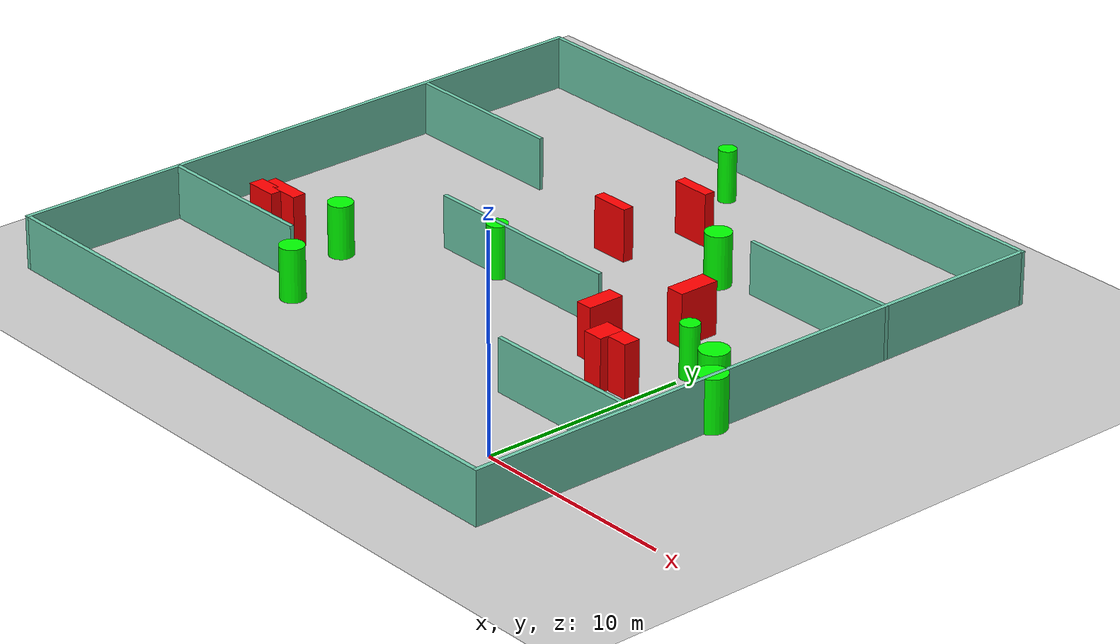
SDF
<sdf version="1.7">
 <world name="default">
  <light name="sun" type="directional">
   <pose>0 0 10 0 -0 0</pose>
   <diffuse>0.8 0.8 0.8 1</diffuse>
   <specular>0.2 0.2 0.2 1</specular>
   <attenuation>
    <range>1000</range>
    <constant>0.9</constant>
    <linear>0.01</linear>
    <quadratic>0.001</quadratic>
   </attenuation>
   <direction>-0.5 0.1 -0.9</direction>
   <spot><inner_angle>0</inner_angle><outer_angle>0</outer_angle><falloff>0</falloff></spot>
  </light>
  <model name="ground_plane">
   <static>1</static>
   <link name="link">
    <collision name="collision">
     <geometry><plane><normal>0 0 1</normal><size>100 100</size></plane></geometry>
     <surface>
      <contact><collide_bitmask>65535</collide_bitmask></contact>
      <friction><ode><mu>100</mu><mu2>50</mu2></ode></friction>
     </surface>
    </collision>
    <visual name="visual">
     <cast_shadows>0</cast_shadows>
     <geometry><plane><normal>0 0 1</normal><size>100 100</size></plane></geometry>
     <material>
      <script><uri>file://media/materials/scripts/gazebo.material</uri><name>Gazebo/Grey</name></script>
     </material>
    </visual>
   </link>
  </model>
  <gravity>0 0 -9.8</gravity>
  <magnetic_field>6e-06 2.3e-05 -4.2e-05</magnetic_field>
  <atmosphere type="adiabatic"/>
  <physics type="ode">
   <max_step_size>0.001</max_step_size>
   <real_time_factor>1</real_time_factor>
   <real_time_update_rate>1000</real_time_update_rate>
  </physics>
  <scene><ambient>0.4 0.4 0.4 1</ambient><background>0.7 0.7 0.7 1</background><shadows>1</shadows></scene>
  <spherical_coordinates>
   <surface_model>EARTH_WGS84</surface_model>
   <latitude_deg>0</latitude_deg>
   <longitude_deg>0</longitude_deg>
   <elevation>0</elevation>
   <heading_deg>0</heading_deg>
  </spherical_coordinates>
  <model name="my_base_walls">
   <link name="Wall_10">
    <collision name="Wall_10_Collision">
     <geometry><box><size>8.2 0.2 2.5</size></box></geometry>
     <pose>0 0 1.25 0 -0 0</pose>
    </collision>
    <visual name="Wall_10_Visual">
     <pose>0 0 1.25 0 -0 0</pose>
     <geometry><box><size>8.2 0.2 2.5</size></box></geometry>
     <material>
      <script><uri>file://media/materials/scripts/gazebo.material</uri><name>Gazebo/Grey</name></script>
      <ambient>0.435294 0.796078 0.67451 1</ambient>
     </material>
     <meta><layer>0</layer></meta>
    </visual>
    <pose>-11 -7 0 0 -0 0</pose>
   </link>
   <link name="Wall_12">
    <collision name="Wall_12_Collision">
     <geometry><box><size>8.2 0.2 2.5</size></box></geometry>
     <pose>0 0 1.25 0 -0 0</pose>
    </collision>
    <visual name="Wall_12_Visual">
     <pose>0 0 1.25 0 -0 0</pose>
     <geometry><box><size>8.2 0.2 2.5</size></box></geometry>
     <material>
      <script><uri>file://media/materials/scripts/gazebo.material</uri><name>Gazebo/Grey</name></script>
      <ambient>0.435294 0.796078 0.67451 1</ambient>
     </material>
     <meta><layer>0</layer></meta>
    </visual>
    <pose>-11 7 0 0 -0 0</pose>
   </link>
   <link name="Wall_14">
    <collision name="Wall_14_Collision">
     <geometry><box><size>8.2 0.2 2.5</size></box></geometry>
     <pose>0 0 1.25 0 -0 0</pose>
    </collision>
    <visual name="Wall_14_Visual">
     <pose>0 0 1.25 0 -0 0</pose>
     <geometry><box><size>8.2 0.2 2.5</size></box></geometry>
     <material>
      <script><uri>file://media/materials/scripts/gazebo.material</uri><name>Gazebo/Grey</name></script>
      <ambient>0.435294 0.796078 0.67451 1</ambient>
     </material>
     <meta><layer>0</layer></meta>
    </visual>
    <pose>11 7 0 0 -0 3.14159</pose>
   </link>
   <link name="Wall_16">
    <collision name="Wall_16_Collision">
     <geometry><box><size>10.2 0.2 2.5</size></box></geometry>
     <pose>0 0 1.25 0 -0 0</pose>
    </collision>
    <visual name="Wall_16_Visual">
     <pose>0 0 1.25 0 -0 0</pose>
     <geometry><box><size>10.2 0.2 2.5</size></box></geometry>
     <material>
      <script><uri>file://media/materials/scripts/gazebo.material</uri><name>Gazebo/Grey</name></script>
      <ambient>0.435294 0.796078 0.67451 1</ambient>
     </material>
     <meta><layer>0</layer></meta>
    </visual>
    <pose>0 0 0 0 -0 3.14159</pose>
   </link>
   <link name="Wall_2">
    <collision name="Wall_2_Collision">
     <geometry><box><size>30.2 0.2 2.5</size></box></geometry>
     <pose>0 0 1.25 0 -0 0</pose>
    </collision>
    <visual name="Wall_2_Visual">
     <pose>0 0 1.25 0 -0 0</pose>
     <geometry><box><size>30.2 0.2 2.5</size></box></geometry>
     <material>
      <script><uri>file://media/materials/scripts/gazebo.material</uri><name>Gazebo/Grey</name></script>
      <ambient>0.435294 0.796078 0.67451 1</ambient>
     </material>
     <meta><layer>0</layer></meta>
    </visual>
    <pose>0 -15 0 0 -0 3.14159</pose>
   </link>
   <link name="Wall_3">
    <collision name="Wall_3_Collision">
     <geometry><box><size>30.2 0.2 2.5</size></box></geometry>
     <pose>0 0 1.25 0 -0 0</pose>
    </collision>
    <visual name="Wall_3_Visual">
     <pose>0 0 1.25 0 -0 0</pose>
     <geometry><box><size>30.2 0.2 2.5</size></box></geometry>
     <material>
      <script><uri>file://media/materials/scripts/gazebo.material</uri><name>Gazebo/Grey</name></script>
      <ambient>0.435294 0.796078 0.67451 1</ambient>
     </material>
     <meta><layer>0</layer></meta>
    </visual>
    <pose>-15 0 0 0 -0 1.5708</pose>
   </link>
   <link name="Wall_4">
    <collision name="Wall_4_Collision">
     <geometry><box><size>30.2 0.2 2.5</size></box></geometry>
     <pose>0 0 1.25 0 -0 0</pose>
    </collision>
    <visual name="Wall_4_Visual">
     <pose>0 0 1.25 0 -0 0</pose>
     <geometry><box><size>30.2 0.2 2.5</size></box></geometry>
     <material>
      <script><uri>file://media/materials/scripts/gazebo.material</uri><name>Gazebo/Grey</name></script>
      <ambient>0.435294 0.796078 0.67451 1</ambient>
     </material>
     <meta><layer>0</layer></meta>
    </visual>
    <pose>0 15 0 0 -0 0</pose>
   </link>
   <link name="Wall_6">
    <collision name="Wall_6_Collision">
     <geometry><box><size>30.2 0.2 2.5</size></box></geometry>
     <pose>0 0 1.25 0 -0 0</pose>
    </collision>
    <visual name="Wall_6_Visual">
     <pose>0 0 1.25 0 -0 0</pose>
     <geometry><box><size>30.2 0.2 2.5</size></box></geometry>
     <material>
      <script><uri>file://media/materials/scripts/gazebo.material</uri><name>Gazebo/Grey</name></script>
      <ambient>0.435294 0.796078 0.67451 1</ambient>
     </material>
     <meta><layer>0</layer></meta>
    </visual>
    <pose>15 0 0 0 -0 1.5708</pose>
   </link>
   <link name="Wall_8">
    <collision name="Wall_8_Collision">
     <geometry><box><size>8.2 0.2 2.5</size></box></geometry>
     <pose>0 0 1.25 0 -0 0</pose>
    </collision>
    <visual name="Wall_8_Visual">
     <pose>0 0 1.25 0 -0 0</pose>
     <geometry><box><size>8.2 0.2 2.5</size></box></geometry>
     <material>
      <script><uri>file://media/materials/scripts/gazebo.material</uri><name>Gazebo/Grey</name></script>
      <ambient>0.435294 0.796078 0.67451 1</ambient>
     </material>
     <meta><layer>0</layer></meta>
    </visual>
    <pose>11 -7 0 0 -0 3.14159</pose>
   </link>
   <static>1</static>
   <pose>-11 11 0 0 -0 0</pose>
  </model>
  <model name="cylinder1">
   <static>1</static>
   <link name="link">
    <inertial>
     <mass>1</mass>
     <inertia><ixx>0.5</ixx><ixy>0</ixy><ixz>0</ixz><iyy>0.5</iyy><iyz>0</iyz><izz>1</izz></inertia>
    </inertial>
    <collision name="collision">
     <geometry><cylinder><radius>0.6778401003966286</radius><length>2.5</length></cylinder></geometry>
    </collision>
    <visual name="visual">
     <geometry><cylinder><radius>0.6778401003966286</radius><length>2.5</length></cylinder></geometry>
     <material>
      <ambient>0 1 0 1</ambient>
      <diffuse>0 1 0 1</diffuse>
      <specular>0.1 0.1 0.1 1</specular>
      <emissive>0 0 0 0</emissive>
     </material>
    </visual>
   </link>
   <pose>2.3594557195913595 9.944418905093954 1.25 0 0 0</pose>
  </model>
  <model name="cylinder2">
   <static>1</static>
   <link name="link">
    <inertial>
     <mass>1</mass>
     <inertia><ixx>0.5</ixx><ixy>0</ixy><ixz>0</ixz><iyy>0.5</iyy><iyz>0</iyz><izz>1</izz></inertia>
    </inertial>
    <collision name="collision">
     <geometry><cylinder><radius>0.4410078118513681</radius><length>2.5</length></cylinder></geometry>
    </collision>
    <visual name="visual">
     <geometry><cylinder><radius>0.4410078118513681</radius><length>2.5</length></cylinder></geometry>
     <material>
      <ambient>0 1 0 1</ambient>
      <diffuse>0 1 0 1</diffuse>
      <specular>0.1 0.1 0.1 1</specular>
      <emissive>0 0 0 0</emissive>
     </material>
    </visual>
   </link>
   <pose>-0.04364161576094361 10.791439145493747 1.25 0 0 0</pose>
  </model>
  <model name="cylinder3">
   <static>1</static>
   <link name="link">
    <inertial>
     <mass>1</mass>
     <inertia><ixx>0.5</ixx><ixy>0</ixy><ixz>0</ixz><iyy>0.5</iyy><iyz>0</iyz><izz>1</izz></inertia>
    </inertial>
    <collision name="collision">
     <geometry><cylinder><radius>0.4840131147689671</radius><length>2.5</length></cylinder></geometry>
    </collision>
    <visual name="visual">
     <geometry><cylinder><radius>0.4840131147689671</radius><length>2.5</length></cylinder></geometry>
     <material>
      <ambient>0 1 0 1</ambient>
      <diffuse>0 1 0 1</diffuse>
      <specular>0.1 0.1 0.1 1</specular>
      <emissive>0 0 0 0</emissive>
     </material>
    </visual>
   </link>
   <pose>-12.458515804917837 10.888613932567749 1.25 0 0 0</pose>
  </model>
  <model name="cylinder4">
   <static>1</static>
   <link name="link">
    <inertial>
     <mass>1</mass>
     <inertia><ixx>0.5</ixx><ixy>0</ixy><ixz>0</ixz><iyy>0.5</iyy><iyz>0</iyz><izz>1</izz></inertia>
    </inertial>
    <collision name="collision">
     <geometry><cylinder><radius>0.6157671189264353</radius><length>2.5</length></cylinder></geometry>
    </collision>
    <visual name="visual">
     <geometry><cylinder><radius>0.6157671189264353</radius><length>2.5</length></cylinder></geometry>
     <material>
      <ambient>0 1 0 1</ambient>
      <diffuse>0 1 0 1</diffuse>
      <specular>0.1 0.1 0.1 1</specular>
      <emissive>0 0 0 0</emissive>
     </material>
    </visual>
   </link>
   <pose>-5.714420487377179 17.53300399504879 1.25 0 0 0</pose>
  </model>
  <model name="cylinder5">
   <static>1</static>
   <link name="link">
    <inertial>
     <mass>1</mass>
     <inertia><ixx>0.5</ixx><ixy>0</ixy><ixz>0</ixz><iyy>0.5</iyy><iyz>0</iyz><izz>1</izz></inertia>
    </inertial>
    <collision name="collision">
     <geometry><cylinder><radius>0.4204272815432932</radius><length>2.5</length></cylinder></geometry>
    </collision>
    <visual name="visual">
     <geometry><cylinder><radius>0.4204272815432932</radius><length>2.5</length></cylinder></geometry>
     <material>
      <ambient>0 1 0 1</ambient>
      <diffuse>0 1 0 1</diffuse>
      <specular>0.1 0.1 0.1 1</specular>
      <emissive>0 0 0 0</emissive>
     </material>
    </visual>
   </link>
   <pose>-11.760547307102678 23.58884909273511 1.25 0 0 0</pose>
  </model>
  <model name="cylinder6">
   <static>1</static>
   <link name="link">
    <inertial>
     <mass>1</mass>
     <inertia><ixx>0.5</ixx><ixy>0</ixy><ixz>0</ixz><iyy>0.5</iyy><iyz>0</iyz><izz>1</izz></inertia>
    </inertial>
    <collision name="collision">
     <geometry><cylinder><radius>0.5840706454074539</radius><length>2.5</length></cylinder></geometry>
    </collision>
    <visual name="visual">
     <geometry><cylinder><radius>0.5840706454074539</radius><length>2.5</length></cylinder></geometry>
     <material>
      <ambient>0 1 0 1</ambient>
      <diffuse>0 1 0 1</diffuse>
      <specular>0.1 0.1 0.1 1</specular>
      <emissive>0 0 0 0</emissive>
     </material>
    </visual>
   </link>
   <pose>-18.451306073093846 7.078031747717237 1.25 0 0 0</pose>
  </model>
  <model name="cylinder7">
   <static>1</static>
   <link name="link">
    <inertial>
     <mass>1</mass>
     <inertia><ixx>0.5</ixx><ixy>0</ixy><ixz>0</ixz><iyy>0.5</iyy><iyz>0</iyz><izz>1</izz></inertia>
    </inertial>
    <collision name="collision">
     <geometry><cylinder><radius>0.5805349036155214</radius><length>2.5</length></cylinder></geometry>
    </collision>
    <visual name="visual">
     <geometry><cylinder><radius>0.5805349036155214</radius><length>2.5</length></cylinder></geometry>
     <material>
      <ambient>0 1 0 1</ambient>
      <diffuse>0 1 0 1</diffuse>
      <specular>0.1 0.1 0.1 1</specular>
      <emissive>0 0 0 0</emissive>
     </material>
    </visual>
   </link>
   <pose>-16.44010046659465 2.8579622246448064 1.25 0 0 0</pose>
  </model>
  <model name="cylinder8">
   <static>1</static>
   <link name="link">
    <inertial>
     <mass>1</mass>
     <inertia><ixx>0.5</ixx><ixy>0</ixy><ixz>0</ixz><iyy>0.5</iyy><iyz>0</iyz><izz>1</izz></inertia>
    </inertial>
    <collision name="collision">
     <geometry><cylinder><radius>0.6861130836124079</radius><length>2.5</length></cylinder></geometry>
    </collision>
    <visual name="visual">
     <geometry><cylinder><radius>0.6861130836124079</radius><length>2.5</length></cylinder></geometry>
     <material>
      <ambient>0 1 0 1</ambient>
      <diffuse>0 1 0 1</diffuse>
      <specular>0.1 0.1 0.1 1</specular>
      <emissive>0 0 0 0</emissive>
     </material>
    </visual>
   </link>
   <pose>3.8673465170757844 8.473520694281403 1.25 0 0 0</pose>
  </model>
  <model name="box1">
   <static>1</static>
   <link name="link">
    <inertial>
     <mass>1</mass>
     <inertia><ixx>0.083</ixx><ixy>0</ixy><ixz>0</ixz><iyy>0.083</iyy><iyz>0</iyz><izz>0.083</izz></inertia>
    </inertial>
    <collision name="collision">
     <geometry><box><size>0.8948416818538172 1.9761117303243523 2.5</size></box></geometry>
    </collision>
    <visual name="visual">
     <geometry><box><size>0.8948416818538172 1.9761117303243523 2.5</size></box></geometry>
     <material>
      <ambient>1 0 0 1</ambient>
      <diffuse>1 0 0 1</diffuse>
      <specular>0.1 0.1 0.1 1</specular>
      <emissive>0 0 0 0</emissive>
     </material>
    </visual>
    <sensor name="my_contact" type="contact">
     <contact><collision>box_collision</collision><topic>__default_topic__</topic></contact>
    </sensor>
   </link>
   <pose>-2.647515439603197 13.263730149845266 1.25 0 0 0</pose>
  </model>
  <model name="box2">
   <static>1</static>
   <link name="link">
    <inertial>
     <mass>1</mass>
     <inertia><ixx>0.083</ixx><ixy>0</ixy><ixz>0</ixz><iyy>0.083</iyy><iyz>0</iyz><izz>0.083</izz></inertia>
    </inertial>
    <collision name="collision">
     <geometry><box><size>2.0879844313392573 0.657555427133739 2.5</size></box></geometry>
    </collision>
    <visual name="visual">
     <geometry><box><size>2.0879844313392573 0.657555427133739 2.5</size></box></geometry>
     <material>
      <ambient>1 0 0 1</ambient>
      <diffuse>1 0 0 1</diffuse>
      <specular>0.1 0.1 0.1 1</specular>
      <emissive>0 0 0 0</emissive>
     </material>
    </visual>
    <sensor name="my_contact" type="contact">
     <contact><collision>box_collision</collision><topic>__default_topic__</topic></contact>
    </sensor>
   </link>
   <pose>-21.14584339833954 6.110921098573387 1.25 0 0 0</pose>
  </model>
  <model name="box3">
   <static>1</static>
   <link name="link">
    <inertial>
     <mass>1</mass>
     <inertia><ixx>0.083</ixx><ixy>0</ixy><ixz>0</ixz><iyy>0.083</iyy><iyz>0</iyz><izz>0.083</izz></inertia>
    </inertial>
    <collision name="collision">
     <geometry><box><size>1.525433698659887 0.7186835003393224 2.5</size></box></geometry>
    </collision>
    <visual name="visual">
     <geometry><box><size>1.525433698659887 0.7186835003393224 2.5</size></box></geometry>
     <material>
      <ambient>1 0 0 1</ambient>
      <diffuse>1 0 0 1</diffuse>
      <specular>0.1 0.1 0.1 1</specular>
      <emissive>0 0 0 0</emissive>
     </material>
    </visual>
    <sensor name="my_contact" type="contact">
     <contact><collision>box_collision</collision><topic>__default_topic__</topic></contact>
    </sensor>
   </link>
   <pose>-21.751214243669484 5.622257154363446 1.25 0 0 0</pose>
  </model>
  <model name="box4">
   <static>1</static>
   <link name="link">
    <inertial>
     <mass>1</mass>
     <inertia><ixx>0.083</ixx><ixy>0</ixy><ixz>0</ixz><iyy>0.083</iyy><iyz>0</iyz><izz>0.083</izz></inertia>
    </inertial>
    <collision name="collision">
     <geometry><box><size>1.9232254846158252 0.5290197094657362 2.5</size></box></geometry>
    </collision>
    <visual name="visual">
     <geometry><box><size>1.9232254846158252 0.5290197094657362 2.5</size></box></geometry>
     <material>
      <ambient>1 0 0 1</ambient>
      <diffuse>1 0 0 1</diffuse>
      <specular>0.1 0.1 0.1 1</specular>
      <emissive>0 0 0 0</emissive>
     </material>
    </visual>
    <sensor name="my_contact" type="contact">
     <contact><collision>box_collision</collision><topic>__default_topic__</topic></contact>
    </sensor>
   </link>
   <pose>-10.875832983681436 16.129734543703282 1.25 0 0 0</pose>
  </model>
  <model name="box5">
   <static>1</static>
   <link name="link">
    <inertial>
     <mass>1</mass>
     <inertia><ixx>0.083</ixx><ixy>0</ixy><ixz>0</ixz><iyy>0.083</iyy><iyz>0</iyz><izz>0.083</izz></inertia>
    </inertial>
    <collision name="collision">
     <geometry><box><size>0.9963655165629457 1.2524192623941155 2.5</size></box></geometry>
    </collision>
    <visual name="visual">
     <geometry><box><size>0.9963655165629457 1.2524192623941155 2.5</size></box></geometry>
     <material>
      <ambient>1 0 0 1</ambient>
      <diffuse>1 0 0 1</diffuse>
      <specular>0.1 0.1 0.1 1</specular>
      <emissive>0 0 0 0</emissive>
     </material>
    </visual>
    <sensor name="my_contact" type="contact">
     <contact><collision>box_collision</collision><topic>__default_topic__</topic></contact>
    </sensor>
   </link>
   <pose>-1.7907448758667641 7.623005402698 1.25 0 0 0</pose>
  </model>
  <model name="box6">
   <static>1</static>
   <link name="link">
    <inertial>
     <mass>1</mass>
     <inertia><ixx>0.083</ixx><ixy>0</ixy><ixz>0</ixz><iyy>0.083</iyy><iyz>0</iyz><izz>0.083</izz></inertia>
    </inertial>
    <collision name="collision">
     <geometry><box><size>1.3316416592201095 0.7951495088298877 2.5</size></box></geometry>
    </collision>
    <visual name="visual">
     <geometry><box><size>1.3316416592201095 0.7951495088298877 2.5</size></box></geometry>
     <material>
      <ambient>1 0 0 1</ambient>
      <diffuse>1 0 0 1</diffuse>
      <specular>0.1 0.1 0.1 1</specular>
      <emissive>0 0 0 0</emissive>
     </material>
    </visual>
    <sensor name="my_contact" type="contact">
     <contact><collision>box_collision</collision><topic>__default_topic__</topic></contact>
    </sensor>
   </link>
   <pose>-0.9137373437484868 7.805670395976 1.25 0 0 0</pose>
  </model>
  <model name="box7">
   <static>1</static>
   <link name="link">
    <inertial>
     <mass>1</mass>
     <inertia><ixx>0.083</ixx><ixy>0</ixy><ixz>0</ixz><iyy>0.083</iyy><iyz>0</iyz><izz>0.083</izz></inertia>
    </inertial>
    <collision name="collision">
     <geometry><box><size>0.8145004317222982 1.7789500382847154 2.5</size></box></geometry>
    </collision>
    <visual name="visual">
     <geometry><box><size>0.8145004317222982 1.7789500382847154 2.5</size></box></geometry>
     <material>
      <ambient>1 0 0 1</ambient>
      <diffuse>1 0 0 1</diffuse>
      <specular>0.1 0.1 0.1 1</specular>
      <emissive>0 0 0 0</emissive>
     </material>
    </visual>
    <sensor name="my_contact" type="contact">
     <contact><collision>box_collision</collision><topic>__default_topic__</topic></contact>
    </sensor>
   </link>
   <pose>-4.10658692419203 9.4239988897103 1.25 0 0 0</pose>
  </model>
  <model name="box8">
   <static>1</static>
   <link name="link">
    <inertial>
     <mass>1</mass>
     <inertia><ixx>0.083</ixx><ixy>0</ixy><ixz>0</ixz><iyy>0.083</iyy><iyz>0</iyz><izz>0.083</izz></inertia>
    </inertial>
    <collision name="collision">
     <geometry><box><size>1.902090380639868 0.5345076184363957 2.5</size></box></geometry>
    </collision>
    <visual name="visual">
     <geometry><box><size>1.902090380639868 0.5345076184363957 2.5</size></box></geometry>
     <material>
      <ambient>1 0 0 1</ambient>
      <diffuse>1 0 0 1</diffuse>
      <specular>0.1 0.1 0.1 1</specular>
      <emissive>0 0 0 0</emissive>
     </material>
    </visual>
    <sensor name="my_contact" type="contact">
     <contact><collision>box_collision</collision><topic>__default_topic__</topic></contact>
    </sensor>
   </link>
   <pose>-9.750801991608157 19.830347095523404 1.25 0 0 0</pose>
  </model>
 </world>
</sdf>
